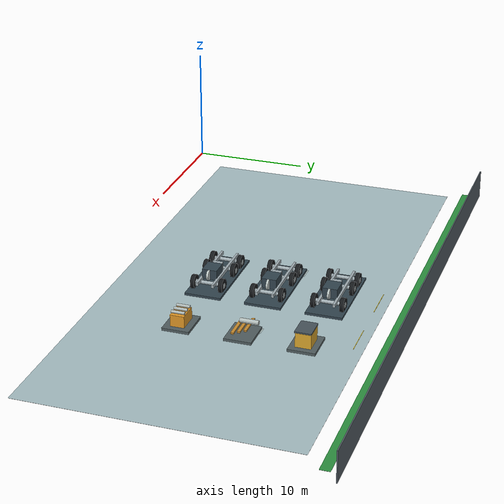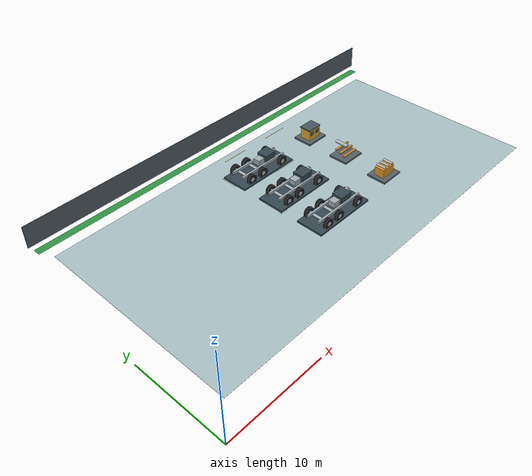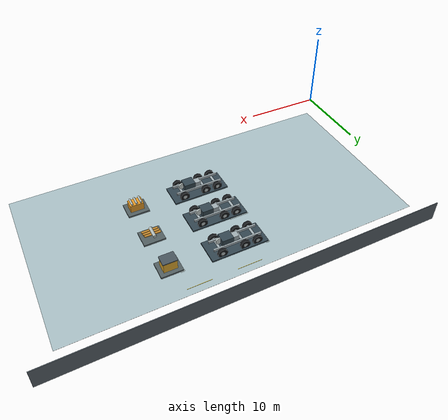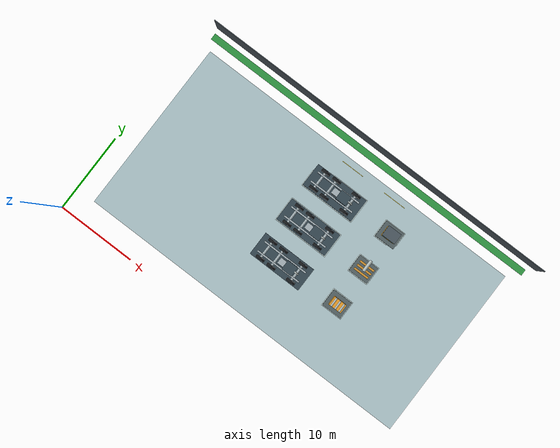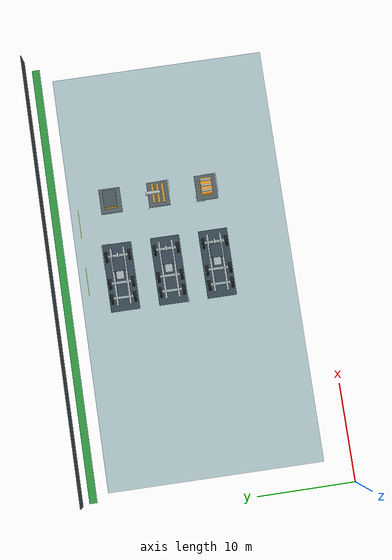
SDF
<sdf version="1.7">
 <world name="warehouse_layout_demo">
  <include><uri>model://sun</uri></include>
  <model name="ne_working_floor">
   <static>true</static>
   <pose>24.0 13.8 0.012 0 0 0</pose>
   <link name="marking">
    <visual name="visual">
     <geometry><box><size>43.0 22.0 0.012</size></box></geometry>
     <material><ambient>0.66 0.75 0.77 1</ambient><diffuse>0.66 0.75 0.77 1</diffuse></material>
    </visual>
   </link>
  </model>
  <model name="pedestrian_north_east">
   <static>true</static>
   <pose>24.3 26.4 0.055 0 0 0</pose>
   <link name="marking">
    <visual name="visual">
     <geometry><box><size>45.2 0.8 0.012</size></box></geometry>
     <material><ambient>0.18 0.57 0.25 1</ambient><diffuse>0.18 0.57 0.25 1</diffuse></material>
    </visual>
   </link>
  </model>
  <model name="north_fence_east">
   <static>true</static>
   <pose>24.7 27.5 1.25 0 0 0</pose>
   <link name="link">
    <collision name="collision">
     <geometry><box><size>46.4 0.09 2.5</size></box></geometry>
     <surface><friction><ode><mu>0.9</mu><mu2>0.9</mu2></ode></friction></surface>
    </collision>
    <visual name="visual">
     <geometry><box><size>46.4 0.09 2.5</size></box></geometry>
     <material><ambient>0.33 0.37 0.40 1</ambient><diffuse>0.33 0.37 0.40 1</diffuse></material>
    </visual>
   </link>
  </model>
  <model name="vehicle_stage_2_line_2_ne">
   <static>true</static>
   <pose>24.0 10.5 0 0 0 0</pose>
   <link name="fixture">
    <collision name="collision">
     <pose>0 0 1.9 0 0 0</pose>
     <geometry><box><size>7.0 3.0 3.8</size></box></geometry>
    </collision>
    <visual name="service_platform">
     <pose>0 0 0.11 0 0 0</pose>
     <geometry><box><size>7.0 3.0 0.22</size></box></geometry>
     <material><ambient>0.20 0.27 0.31 1</ambient><diffuse>0.20 0.27 0.31 1</diffuse></material>
    </visual>
    <visual name="chassis_rail_0">
     <pose>0 -0.66 0.85 0 0 0</pose>
     <geometry><box><size>5.9 0.19 0.28</size></box></geometry>
     <material><ambient>0.63 0.68 0.70 1</ambient><diffuse>0.63 0.68 0.70 1</diffuse></material>
    </visual>
    <visual name="haul_tire_0_0">
     <pose>-2.2 -1.18 0.63 1.57079632679 0 0</pose>
     <geometry><cylinder><radius>0.58</radius><length>0.32</length></cylinder></geometry>
     <material><ambient>0.08 0.09 0.10 1</ambient><diffuse>0.08 0.09 0.10 1</diffuse></material>
    </visual>
    <visual name="tire_hub_0_0">
     <pose>-2.2 -1.18 0.63 1.57079632679 0 0</pose>
     <geometry><cylinder><radius>0.23</radius><length>0.34</length></cylinder></geometry>
     <material><ambient>0.70 0.74 0.74 1</ambient><diffuse>0.70 0.74 0.74 1</diffuse></material>
    </visual>
    <visual name="haul_tire_0_1">
     <pose>-0.65 -1.18 0.63 1.57079632679 0 0</pose>
     <geometry><cylinder><radius>0.58</radius><length>0.32</length></cylinder></geometry>
     <material><ambient>0.08 0.09 0.10 1</ambient><diffuse>0.08 0.09 0.10 1</diffuse></material>
    </visual>
    <visual name="tire_hub_0_1">
     <pose>-0.65 -1.18 0.63 1.57079632679 0 0</pose>
     <geometry><cylinder><radius>0.23</radius><length>0.34</length></cylinder></geometry>
     <material><ambient>0.70 0.74 0.74 1</ambient><diffuse>0.70 0.74 0.74 1</diffuse></material>
    </visual>
    <visual name="haul_tire_0_2">
     <pose>2.15 -1.18 0.63 1.57079632679 0 0</pose>
     <geometry><cylinder><radius>0.58</radius><length>0.32</length></cylinder></geometry>
     <material><ambient>0.08 0.09 0.10 1</ambient><diffuse>0.08 0.09 0.10 1</diffuse></material>
    </visual>
    <visual name="tire_hub_0_2">
     <pose>2.15 -1.18 0.63 1.57079632679 0 0</pose>
     <geometry><cylinder><radius>0.23</radius><length>0.34</length></cylinder></geometry>
     <material><ambient>0.70 0.74 0.74 1</ambient><diffuse>0.70 0.74 0.74 1</diffuse></material>
    </visual>
    <visual name="chassis_rail_1">
     <pose>0 0.66 0.85 0 0 0</pose>
     <geometry><box><size>5.9 0.19 0.28</size></box></geometry>
     <material><ambient>0.63 0.68 0.70 1</ambient><diffuse>0.63 0.68 0.70 1</diffuse></material>
    </visual>
    <visual name="haul_tire_1_0">
     <pose>-2.2 1.18 0.63 1.57079632679 0 0</pose>
     <geometry><cylinder><radius>0.58</radius><length>0.32</length></cylinder></geometry>
     <material><ambient>0.08 0.09 0.10 1</ambient><diffuse>0.08 0.09 0.10 1</diffuse></material>
    </visual>
    <visual name="tire_hub_1_0">
     <pose>-2.2 1.18 0.63 1.57079632679 0 0</pose>
     <geometry><cylinder><radius>0.23</radius><length>0.34</length></cylinder></geometry>
     <material><ambient>0.70 0.74 0.74 1</ambient><diffuse>0.70 0.74 0.74 1</diffuse></material>
    </visual>
    <visual name="haul_tire_1_1">
     <pose>-0.65 1.18 0.63 1.57079632679 0 0</pose>
     <geometry><cylinder><radius>0.58</radius><length>0.32</length></cylinder></geometry>
     <material><ambient>0.08 0.09 0.10 1</ambient><diffuse>0.08 0.09 0.10 1</diffuse></material>
    </visual>
    <visual name="tire_hub_1_1">
     <pose>-0.65 1.18 0.63 1.57079632679 0 0</pose>
     <geometry><cylinder><radius>0.23</radius><length>0.34</length></cylinder></geometry>
     <material><ambient>0.70 0.74 0.74 1</ambient><diffuse>0.70 0.74 0.74 1</diffuse></material>
    </visual>
    <visual name="haul_tire_1_2">
     <pose>2.15 1.18 0.63 1.57079632679 0 0</pose>
     <geometry><cylinder><radius>0.58</radius><length>0.32</length></cylinder></geometry>
     <material><ambient>0.08 0.09 0.10 1</ambient><diffuse>0.08 0.09 0.10 1</diffuse></material>
    </visual>
    <visual name="tire_hub_1_2">
     <pose>2.15 1.18 0.63 1.57079632679 0 0</pose>
     <geometry><cylinder><radius>0.23</radius><length>0.34</length></cylinder></geometry>
     <material><ambient>0.70 0.74 0.74 1</ambient><diffuse>0.70 0.74 0.74 1</diffuse></material>
    </visual>
    <visual name="drive_axle_0">
     <pose>-2.2 0 0.68 1.57079632679 0 0</pose>
     <geometry><cylinder><radius>0.15</radius><length>2.38</length></cylinder></geometry>
     <material><ambient>0.63 0.68 0.70 1</ambient><diffuse>0.63 0.68 0.70 1</diffuse></material>
    </visual>
    <visual name="drive_axle_1">
     <pose>-0.65 0 0.68 1.57079632679 0 0</pose>
     <geometry><cylinder><radius>0.15</radius><length>2.38</length></cylinder></geometry>
     <material><ambient>0.63 0.68 0.70 1</ambient><diffuse>0.63 0.68 0.70 1</diffuse></material>
    </visual>
    <visual name="drive_axle_2">
     <pose>2.15 0 0.68 1.57079632679 0 0</pose>
     <geometry><cylinder><radius>0.15</radius><length>2.38</length></cylinder></geometry>
     <material><ambient>0.63 0.68 0.70 1</ambient><diffuse>0.63 0.68 0.70 1</diffuse></material>
    </visual>
    <visual name="diesel_engine">
     <pose>1.15 0 1.26 0 0 0</pose>
     <geometry><box><size>1.38 1.22 0.83</size></box></geometry>
     <material><ambient>0.20 0.27 0.31 1</ambient><diffuse>0.20 0.27 0.31 1</diffuse></material>
    </visual>
    <visual name="gearbox">
     <pose>0.08 0 1.12 0 0 0</pose>
     <geometry><box><size>0.82 0.76 0.6</size></box></geometry>
     <material><ambient>0.63 0.68 0.70 1</ambient><diffuse>0.63 0.68 0.70 1</diffuse></material>
    </visual>
    <visual name="radiator_fan">
     <pose>1.98 0 1.29 1.57079632679 0 0</pose>
     <geometry><cylinder><radius>0.41</radius><length>0.15</length></cylinder></geometry>
     <material><ambient>0.76 0.80 0.79 1</ambient><diffuse>0.76 0.80 0.79 1</diffuse></material>
    </visual>
   </link>
  </model>
  <model name="assembly_kit_2_line_2_ne_pad">
   <static>true</static>
   <pose>32.0 10.5 0.012 0 0 0</pose>
   <link name="marking">
    <visual name="visual">
     <geometry><box><size>2.8000000000000003 2.4000000000000004 0.012</size></box></geometry>
     <material><ambient>0.72 0.79 0.78 1</ambient><diffuse>0.72 0.79 0.78 1</diffuse></material>
    </visual>
   </link>
  </model>
  <model name="assembly_kit_2_line_2_ne">
   <static>true</static>
   <pose>32.0 10.5 0 0 0 0</pose>
   <link name="fixture">
    <collision name="collision">
     <pose>0 0 0.95 0 0 0</pose>
     <geometry><box><size>2.6 2.2 1.9</size></box></geometry>
    </collision>
    <visual name="kit_frame">
     <pose>0 0 0.12 0 0 0</pose>
     <geometry><box><size>2.6 2.2 0.24</size></box></geometry>
     <material><ambient>0.32 0.37 0.38 1</ambient><diffuse>0.32 0.37 0.38 1</diffuse></material>
    </visual>
    <visual name="engine_crate">
     <pose>0 0 0.7 0 0 0</pose>
     <geometry><box><size>1.65 1.14 1.02</size></box></geometry>
     <material><ambient>0.89 0.60 0.15 1</ambient><diffuse>0.89 0.60 0.15 1</diffuse></material>
    </visual>
    <visual name="pipe_0">
     <pose>-0.55 0 1.38 1.57079632679 0 0</pose>
     <geometry><cylinder><radius>0.12</radius><length>1.1</length></cylinder></geometry>
     <material><ambient>0.69 0.73 0.72 1</ambient><diffuse>0.69 0.73 0.72 1</diffuse></material>
    </visual>
    <visual name="pipe_1">
     <pose>0 0 1.38 1.57079632679 0 0</pose>
     <geometry><cylinder><radius>0.12</radius><length>1.1</length></cylinder></geometry>
     <material><ambient>0.69 0.73 0.72 1</ambient><diffuse>0.69 0.73 0.72 1</diffuse></material>
    </visual>
    <visual name="pipe_2">
     <pose>0.55 0 1.38 1.57079632679 0 0</pose>
     <geometry><cylinder><radius>0.12</radius><length>1.1</length></cylinder></geometry>
     <material><ambient>0.69 0.73 0.72 1</ambient><diffuse>0.69 0.73 0.72 1</diffuse></material>
    </visual>
   </link>
  </model>
  <model name="vehicle_stage_2_line_3_ne_pad">
   <static>true</static>
   <pose>24.0 15.5 0.012 0 0 0</pose>
   <link name="marking">
    <visual name="visual">
     <geometry><box><size>7.2 3.2 0.012</size></box></geometry>
     <material><ambient>0.72 0.79 0.78 1</ambient><diffuse>0.72 0.79 0.78 1</diffuse></material>
    </visual>
   </link>
  </model>
  <model name="vehicle_stage_2_line_3_ne">
   <static>true</static>
   <pose>24.0 15.5 0 0 0 0</pose>
   <link name="fixture">
    <collision name="collision">
     <pose>0 0 1.9 0 0 0</pose>
     <geometry><box><size>7.0 3.0 3.8</size></box></geometry>
    </collision>
    <visual name="service_platform">
     <pose>0 0 0.11 0 0 0</pose>
     <geometry><box><size>7.0 3.0 0.22</size></box></geometry>
     <material><ambient>0.20 0.27 0.31 1</ambient><diffuse>0.20 0.27 0.31 1</diffuse></material>
    </visual>
    <visual name="chassis_rail_0">
     <pose>0 -0.66 0.85 0 0 0</pose>
     <geometry><box><size>5.9 0.19 0.28</size></box></geometry>
     <material><ambient>0.63 0.68 0.70 1</ambient><diffuse>0.63 0.68 0.70 1</diffuse></material>
    </visual>
    <visual name="haul_tire_0_0">
     <pose>-2.2 -1.18 0.63 1.57079632679 0 0</pose>
     <geometry><cylinder><radius>0.58</radius><length>0.32</length></cylinder></geometry>
     <material><ambient>0.08 0.09 0.10 1</ambient><diffuse>0.08 0.09 0.10 1</diffuse></material>
    </visual>
    <visual name="tire_hub_0_0">
     <pose>-2.2 -1.18 0.63 1.57079632679 0 0</pose>
     <geometry><cylinder><radius>0.23</radius><length>0.34</length></cylinder></geometry>
     <material><ambient>0.70 0.74 0.74 1</ambient><diffuse>0.70 0.74 0.74 1</diffuse></material>
    </visual>
    <visual name="haul_tire_0_1">
     <pose>-0.65 -1.18 0.63 1.57079632679 0 0</pose>
     <geometry><cylinder><radius>0.58</radius><length>0.32</length></cylinder></geometry>
     <material><ambient>0.08 0.09 0.10 1</ambient><diffuse>0.08 0.09 0.10 1</diffuse></material>
    </visual>
    <visual name="tire_hub_0_1">
     <pose>-0.65 -1.18 0.63 1.57079632679 0 0</pose>
     <geometry><cylinder><radius>0.23</radius><length>0.34</length></cylinder></geometry>
     <material><ambient>0.70 0.74 0.74 1</ambient><diffuse>0.70 0.74 0.74 1</diffuse></material>
    </visual>
    <visual name="haul_tire_0_2">
     <pose>2.15 -1.18 0.63 1.57079632679 0 0</pose>
     <geometry><cylinder><radius>0.58</radius><length>0.32</length></cylinder></geometry>
     <material><ambient>0.08 0.09 0.10 1</ambient><diffuse>0.08 0.09 0.10 1</diffuse></material>
    </visual>
    <visual name="tire_hub_0_2">
     <pose>2.15 -1.18 0.63 1.57079632679 0 0</pose>
     <geometry><cylinder><radius>0.23</radius><length>0.34</length></cylinder></geometry>
     <material><ambient>0.70 0.74 0.74 1</ambient><diffuse>0.70 0.74 0.74 1</diffuse></material>
    </visual>
    <visual name="chassis_rail_1">
     <pose>0 0.66 0.85 0 0 0</pose>
     <geometry><box><size>5.9 0.19 0.28</size></box></geometry>
     <material><ambient>0.63 0.68 0.70 1</ambient><diffuse>0.63 0.68 0.70 1</diffuse></material>
    </visual>
    <visual name="haul_tire_1_0">
     <pose>-2.2 1.18 0.63 1.57079632679 0 0</pose>
     <geometry><cylinder><radius>0.58</radius><length>0.32</length></cylinder></geometry>
     <material><ambient>0.08 0.09 0.10 1</ambient><diffuse>0.08 0.09 0.10 1</diffuse></material>
    </visual>
    <visual name="tire_hub_1_0">
     <pose>-2.2 1.18 0.63 1.57079632679 0 0</pose>
     <geometry><cylinder><radius>0.23</radius><length>0.34</length></cylinder></geometry>
     <material><ambient>0.70 0.74 0.74 1</ambient><diffuse>0.70 0.74 0.74 1</diffuse></material>
    </visual>
    <visual name="haul_tire_1_1">
     <pose>-0.65 1.18 0.63 1.57079632679 0 0</pose>
     <geometry><cylinder><radius>0.58</radius><length>0.32</length></cylinder></geometry>
     <material><ambient>0.08 0.09 0.10 1</ambient><diffuse>0.08 0.09 0.10 1</diffuse></material>
    </visual>
    <visual name="tire_hub_1_1">
     <pose>-0.65 1.18 0.63 1.57079632679 0 0</pose>
     <geometry><cylinder><radius>0.23</radius><length>0.34</length></cylinder></geometry>
     <material><ambient>0.70 0.74 0.74 1</ambient><diffuse>0.70 0.74 0.74 1</diffuse></material>
    </visual>
    <visual name="haul_tire_1_2">
     <pose>2.15 1.18 0.63 1.57079632679 0 0</pose>
     <geometry><cylinder><radius>0.58</radius><length>0.32</length></cylinder></geometry>
     <material><ambient>0.08 0.09 0.10 1</ambient><diffuse>0.08 0.09 0.10 1</diffuse></material>
    </visual>
    <visual name="tire_hub_1_2">
     <pose>2.15 1.18 0.63 1.57079632679 0 0</pose>
     <geometry><cylinder><radius>0.23</radius><length>0.34</length></cylinder></geometry>
     <material><ambient>0.70 0.74 0.74 1</ambient><diffuse>0.70 0.74 0.74 1</diffuse></material>
    </visual>
    <visual name="drive_axle_0">
     <pose>-2.2 0 0.68 1.57079632679 0 0</pose>
     <geometry><cylinder><radius>0.15</radius><length>2.38</length></cylinder></geometry>
     <material><ambient>0.63 0.68 0.70 1</ambient><diffuse>0.63 0.68 0.70 1</diffuse></material>
    </visual>
    <visual name="drive_axle_1">
     <pose>-0.65 0 0.68 1.57079632679 0 0</pose>
     <geometry><cylinder><radius>0.15</radius><length>2.38</length></cylinder></geometry>
     <material><ambient>0.63 0.68 0.70 1</ambient><diffuse>0.63 0.68 0.70 1</diffuse></material>
    </visual>
    <visual name="drive_axle_2">
     <pose>2.15 0 0.68 1.57079632679 0 0</pose>
     <geometry><cylinder><radius>0.15</radius><length>2.38</length></cylinder></geometry>
     <material><ambient>0.63 0.68 0.70 1</ambient><diffuse>0.63 0.68 0.70 1</diffuse></material>
    </visual>
    <visual name="diesel_engine">
     <pose>1.15 0 1.26 0 0 0</pose>
     <geometry><box><size>1.38 1.22 0.83</size></box></geometry>
     <material><ambient>0.20 0.27 0.31 1</ambient><diffuse>0.20 0.27 0.31 1</diffuse></material>
    </visual>
    <visual name="gearbox">
     <pose>0.08 0 1.12 0 0 0</pose>
     <geometry><box><size>0.82 0.76 0.6</size></box></geometry>
     <material><ambient>0.63 0.68 0.70 1</ambient><diffuse>0.63 0.68 0.70 1</diffuse></material>
    </visual>
    <visual name="radiator_fan">
     <pose>1.98 0 1.29 1.57079632679 0 0</pose>
     <geometry><cylinder><radius>0.41</radius><length>0.15</length></cylinder></geometry>
     <material><ambient>0.76 0.80 0.79 1</ambient><diffuse>0.76 0.80 0.79 1</diffuse></material>
    </visual>
   </link>
  </model>
  <model name="assembly_kit_2_line_3_ne_pad">
   <static>true</static>
   <pose>32.0 15.5 0.012 0 0 0</pose>
   <link name="marking">
    <visual name="visual">
     <geometry><box><size>2.8000000000000003 2.4000000000000004 0.012</size></box></geometry>
     <material><ambient>0.72 0.79 0.78 1</ambient><diffuse>0.72 0.79 0.78 1</diffuse></material>
    </visual>
   </link>
  </model>
  <model name="assembly_kit_2_line_3_ne">
   <static>true</static>
   <pose>32.0 15.5 0 0 0 0</pose>
   <link name="fixture">
    <collision name="collision">
     <pose>0 0 0.95 0 0 0</pose>
     <geometry><box><size>2.6 2.2 1.9</size></box></geometry>
    </collision>
    <visual name="kit_frame">
     <pose>0 0 0.12 0 0 0</pose>
     <geometry><box><size>2.6 2.2 0.24</size></box></geometry>
     <material><ambient>0.32 0.37 0.38 1</ambient><diffuse>0.32 0.37 0.38 1</diffuse></material>
    </visual>
    <visual name="bed_panel_0">
     <pose>0 -0.52 0.58 0 0 0</pose>
     <geometry><box><size>1.96 0.24 0.13</size></box></geometry>
     <material><ambient>0.79 0.55 0.18 1</ambient><diffuse>0.79 0.55 0.18 1</diffuse></material>
    </visual>
    <visual name="bed_panel_1">
     <pose>0 0 0.78 0 0 0</pose>
     <geometry><box><size>1.96 0.24 0.13</size></box></geometry>
     <material><ambient>0.79 0.55 0.18 1</ambient><diffuse>0.79 0.55 0.18 1</diffuse></material>
    </visual>
    <visual name="bed_panel_2">
     <pose>0 0.52 0.98 0 0 0</pose>
     <geometry><box><size>1.96 0.24 0.13</size></box></geometry>
     <material><ambient>0.79 0.55 0.18 1</ambient><diffuse>0.79 0.55 0.18 1</diffuse></material>
    </visual>
    <visual name="lift_ram">
     <pose>0 0.54 1.28 1.57079632679 0 0</pose>
     <geometry><cylinder><radius>0.19</radius><length>1.5</length></cylinder></geometry>
     <material><ambient>0.69 0.73 0.72 1</ambient><diffuse>0.69 0.73 0.72 1</diffuse></material>
    </visual>
   </link>
  </model>
  <model name="vehicle_stage_2_line_4_ne_pad">
   <static>true</static>
   <pose>24.0 20.5 0.012 0 0 0</pose>
   <link name="marking">
    <visual name="visual">
     <geometry><box><size>7.2 3.2 0.012</size></box></geometry>
     <material><ambient>0.72 0.79 0.78 1</ambient><diffuse>0.72 0.79 0.78 1</diffuse></material>
    </visual>
   </link>
  </model>
  <model name="vehicle_stage_2_line_4_ne">
   <static>true</static>
   <pose>24.0 20.5 0 0 0 0</pose>
   <link name="fixture">
    <collision name="collision">
     <pose>0 0 1.9 0 0 0</pose>
     <geometry><box><size>7.0 3.0 3.8</size></box></geometry>
    </collision>
    <visual name="service_platform">
     <pose>0 0 0.11 0 0 0</pose>
     <geometry><box><size>7.0 3.0 0.22</size></box></geometry>
     <material><ambient>0.20 0.27 0.31 1</ambient><diffuse>0.20 0.27 0.31 1</diffuse></material>
    </visual>
    <visual name="chassis_rail_0">
     <pose>0 -0.66 0.85 0 0 0</pose>
     <geometry><box><size>5.9 0.19 0.28</size></box></geometry>
     <material><ambient>0.63 0.68 0.70 1</ambient><diffuse>0.63 0.68 0.70 1</diffuse></material>
    </visual>
    <visual name="haul_tire_0_0">
     <pose>-2.2 -1.18 0.63 1.57079632679 0 0</pose>
     <geometry><cylinder><radius>0.58</radius><length>0.32</length></cylinder></geometry>
     <material><ambient>0.08 0.09 0.10 1</ambient><diffuse>0.08 0.09 0.10 1</diffuse></material>
    </visual>
    <visual name="tire_hub_0_0">
     <pose>-2.2 -1.18 0.63 1.57079632679 0 0</pose>
     <geometry><cylinder><radius>0.23</radius><length>0.34</length></cylinder></geometry>
     <material><ambient>0.70 0.74 0.74 1</ambient><diffuse>0.70 0.74 0.74 1</diffuse></material>
    </visual>
    <visual name="haul_tire_0_1">
     <pose>-0.65 -1.18 0.63 1.57079632679 0 0</pose>
     <geometry><cylinder><radius>0.58</radius><length>0.32</length></cylinder></geometry>
     <material><ambient>0.08 0.09 0.10 1</ambient><diffuse>0.08 0.09 0.10 1</diffuse></material>
    </visual>
    <visual name="tire_hub_0_1">
     <pose>-0.65 -1.18 0.63 1.57079632679 0 0</pose>
     <geometry><cylinder><radius>0.23</radius><length>0.34</length></cylinder></geometry>
     <material><ambient>0.70 0.74 0.74 1</ambient><diffuse>0.70 0.74 0.74 1</diffuse></material>
    </visual>
    <visual name="haul_tire_0_2">
     <pose>2.15 -1.18 0.63 1.57079632679 0 0</pose>
     <geometry><cylinder><radius>0.58</radius><length>0.32</length></cylinder></geometry>
     <material><ambient>0.08 0.09 0.10 1</ambient><diffuse>0.08 0.09 0.10 1</diffuse></material>
    </visual>
    <visual name="tire_hub_0_2">
     <pose>2.15 -1.18 0.63 1.57079632679 0 0</pose>
     <geometry><cylinder><radius>0.23</radius><length>0.34</length></cylinder></geometry>
     <material><ambient>0.70 0.74 0.74 1</ambient><diffuse>0.70 0.74 0.74 1</diffuse></material>
    </visual>
    <visual name="chassis_rail_1">
     <pose>0 0.66 0.85 0 0 0</pose>
     <geometry><box><size>5.9 0.19 0.28</size></box></geometry>
     <material><ambient>0.63 0.68 0.70 1</ambient><diffuse>0.63 0.68 0.70 1</diffuse></material>
    </visual>
    <visual name="haul_tire_1_0">
     <pose>-2.2 1.18 0.63 1.57079632679 0 0</pose>
     <geometry><cylinder><radius>0.58</radius><length>0.32</length></cylinder></geometry>
     <material><ambient>0.08 0.09 0.10 1</ambient><diffuse>0.08 0.09 0.10 1</diffuse></material>
    </visual>
    <visual name="tire_hub_1_0">
     <pose>-2.2 1.18 0.63 1.57079632679 0 0</pose>
     <geometry><cylinder><radius>0.23</radius><length>0.34</length></cylinder></geometry>
     <material><ambient>0.70 0.74 0.74 1</ambient><diffuse>0.70 0.74 0.74 1</diffuse></material>
    </visual>
    <visual name="haul_tire_1_1">
     <pose>-0.65 1.18 0.63 1.57079632679 0 0</pose>
     <geometry><cylinder><radius>0.58</radius><length>0.32</length></cylinder></geometry>
     <material><ambient>0.08 0.09 0.10 1</ambient><diffuse>0.08 0.09 0.10 1</diffuse></material>
    </visual>
    <visual name="tire_hub_1_1">
     <pose>-0.65 1.18 0.63 1.57079632679 0 0</pose>
     <geometry><cylinder><radius>0.23</radius><length>0.34</length></cylinder></geometry>
     <material><ambient>0.70 0.74 0.74 1</ambient><diffuse>0.70 0.74 0.74 1</diffuse></material>
    </visual>
    <visual name="haul_tire_1_2">
     <pose>2.15 1.18 0.63 1.57079632679 0 0</pose>
     <geometry><cylinder><radius>0.58</radius><length>0.32</length></cylinder></geometry>
     <material><ambient>0.08 0.09 0.10 1</ambient><diffuse>0.08 0.09 0.10 1</diffuse></material>
    </visual>
    <visual name="tire_hub_1_2">
     <pose>2.15 1.18 0.63 1.57079632679 0 0</pose>
     <geometry><cylinder><radius>0.23</radius><length>0.34</length></cylinder></geometry>
     <material><ambient>0.70 0.74 0.74 1</ambient><diffuse>0.70 0.74 0.74 1</diffuse></material>
    </visual>
    <visual name="drive_axle_0">
     <pose>-2.2 0 0.68 1.57079632679 0 0</pose>
     <geometry><cylinder><radius>0.15</radius><length>2.38</length></cylinder></geometry>
     <material><ambient>0.63 0.68 0.70 1</ambient><diffuse>0.63 0.68 0.70 1</diffuse></material>
    </visual>
    <visual name="drive_axle_1">
     <pose>-0.65 0 0.68 1.57079632679 0 0</pose>
     <geometry><cylinder><radius>0.15</radius><length>2.38</length></cylinder></geometry>
     <material><ambient>0.63 0.68 0.70 1</ambient><diffuse>0.63 0.68 0.70 1</diffuse></material>
    </visual>
    <visual name="drive_axle_2">
     <pose>2.15 0 0.68 1.57079632679 0 0</pose>
     <geometry><cylinder><radius>0.15</radius><length>2.38</length></cylinder></geometry>
     <material><ambient>0.63 0.68 0.70 1</ambient><diffuse>0.63 0.68 0.70 1</diffuse></material>
    </visual>
    <visual name="diesel_engine">
     <pose>1.15 0 1.26 0 0 0</pose>
     <geometry><box><size>1.38 1.22 0.83</size></box></geometry>
     <material><ambient>0.20 0.27 0.31 1</ambient><diffuse>0.20 0.27 0.31 1</diffuse></material>
    </visual>
    <visual name="gearbox">
     <pose>0.08 0 1.12 0 0 0</pose>
     <geometry><box><size>0.82 0.76 0.6</size></box></geometry>
     <material><ambient>0.63 0.68 0.70 1</ambient><diffuse>0.63 0.68 0.70 1</diffuse></material>
    </visual>
    <visual name="radiator_fan">
     <pose>1.98 0 1.29 1.57079632679 0 0</pose>
     <geometry><cylinder><radius>0.41</radius><length>0.15</length></cylinder></geometry>
     <material><ambient>0.76 0.80 0.79 1</ambient><diffuse>0.76 0.80 0.79 1</diffuse></material>
    </visual>
   </link>
  </model>
  <model name="assembly_kit_2_line_4_ne_pad">
   <static>true</static>
   <pose>32.0 20.5 0.012 0 0 0</pose>
   <link name="marking">
    <visual name="visual">
     <geometry><box><size>2.8000000000000003 2.4000000000000004 0.012</size></box></geometry>
     <material><ambient>0.72 0.79 0.78 1</ambient><diffuse>0.72 0.79 0.78 1</diffuse></material>
    </visual>
   </link>
  </model>
  <model name="assembly_kit_2_line_4_ne">
   <static>true</static>
   <pose>32.0 20.5 0 0 0 0</pose>
   <link name="fixture">
    <collision name="collision">
     <pose>0 0 0.95 0 0 0</pose>
     <geometry><box><size>2.6 2.2 1.9</size></box></geometry>
    </collision>
    <visual name="kit_frame">
     <pose>0 0 0.12 0 0 0</pose>
     <geometry><box><size>2.6 2.2 0.24</size></box></geometry>
     <material><ambient>0.32 0.37 0.38 1</ambient><diffuse>0.32 0.37 0.38 1</diffuse></material>
    </visual>
    <visual name="cab_module">
     <pose>0 0 0.8 0 0 0</pose>
     <geometry><box><size>1.62 1.25 1.35</size></box></geometry>
     <material><ambient>0.87 0.66 0.18 1</ambient><diffuse>0.87 0.66 0.18 1</diffuse></material>
    </visual>
    <visual name="cab_window_0">
     <pose>-0.43 -0.64 1.02 0 0 0</pose>
     <geometry><box><size>0.47 0.03 0.45</size></box></geometry>
     <material><ambient>0.19 0.41 0.47 1</ambient><diffuse>0.19 0.41 0.47 1</diffuse></material>
    </visual>
    <visual name="cab_window_1">
     <pose>0.43 -0.64 1.02 0 0 0</pose>
     <geometry><box><size>0.47 0.03 0.45</size></box></geometry>
     <material><ambient>0.19 0.41 0.47 1</ambient><diffuse>0.19 0.41 0.47 1</diffuse></material>
    </visual>
    <visual name="cab_roof">
     <pose>0 0 1.52 0 0 0</pose>
     <geometry><box><size>1.75 1.34 0.12</size></box></geometry>
     <material><ambient>0.28 0.33 0.36 1</ambient><diffuse>0.28 0.33 0.36 1</diffuse></material>
    </visual>
   </link>
  </model>
  <model name="road_dashed_line_12">
   <static>true</static>
   <pose>24 24.0 0.045 0 0 0</pose>
   <link name="marking">
    <visual name="visual">
     <geometry><box><size>3.0 0.042 0.012</size></box></geometry>
     <material><ambient>0.96 0.82 0.12 1</ambient><diffuse>0.96 0.82 0.12 1</diffuse></material>
    </visual>
   </link>
  </model>
  <model name="road_dashed_line_13">
   <static>true</static>
   <pose>30 24.0 0.045 0 0 0</pose>
   <link name="marking">
    <visual name="visual">
     <geometry><box><size>3.0 0.042 0.012</size></box></geometry>
     <material><ambient>0.96 0.82 0.12 1</ambient><diffuse>0.96 0.82 0.12 1</diffuse></material>
    </visual>
   </link>
  </model>
 </world>
</sdf>
